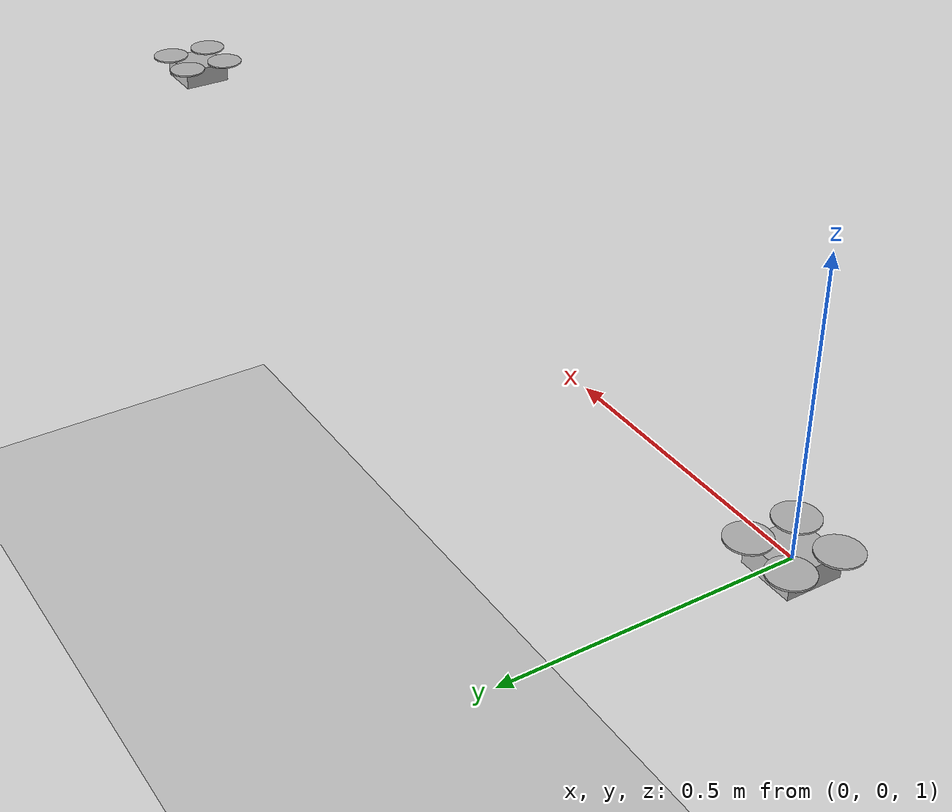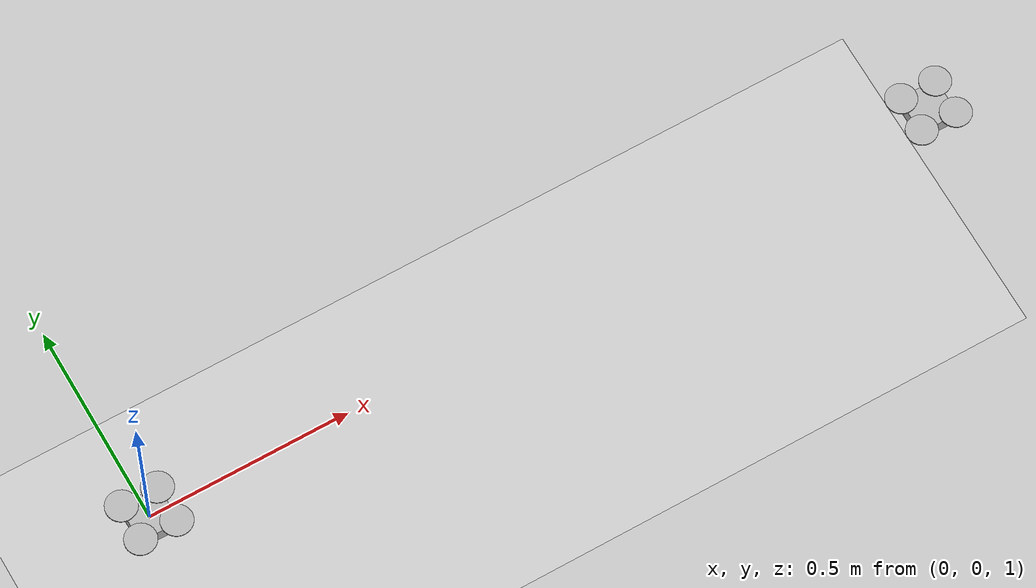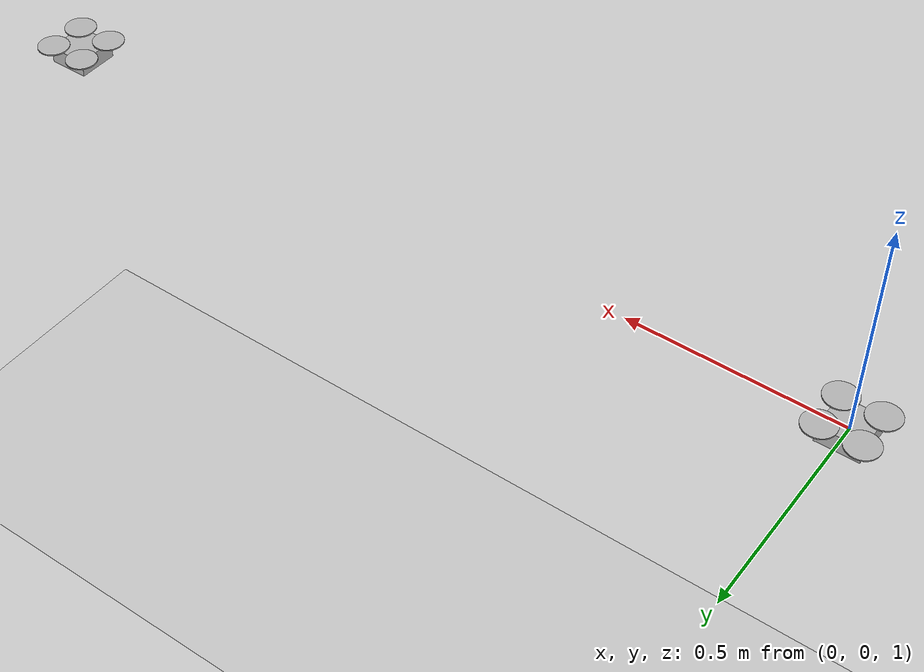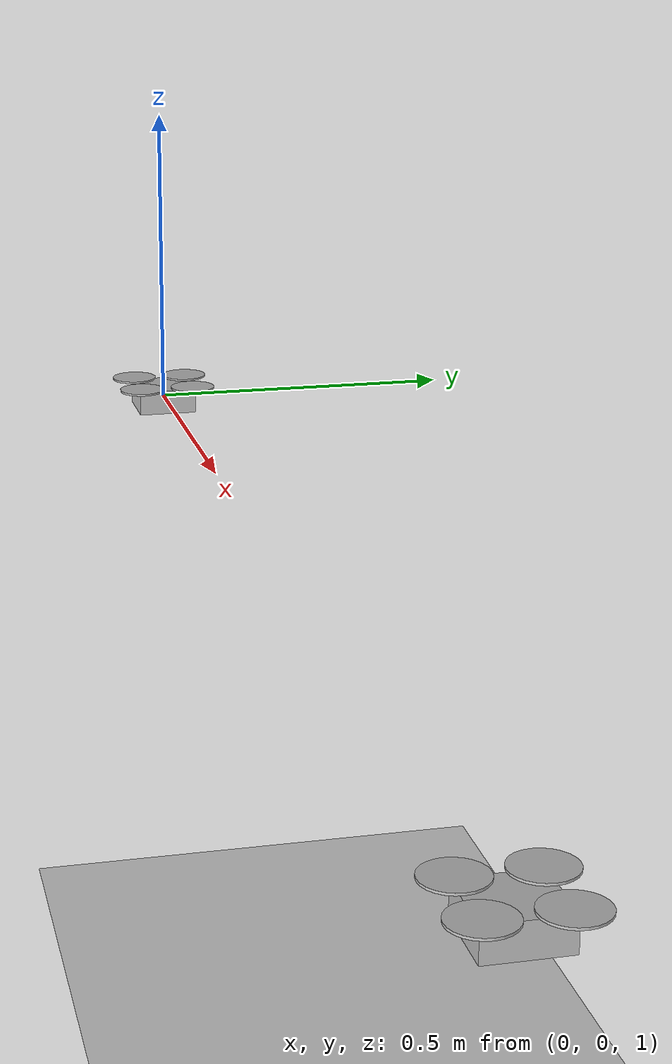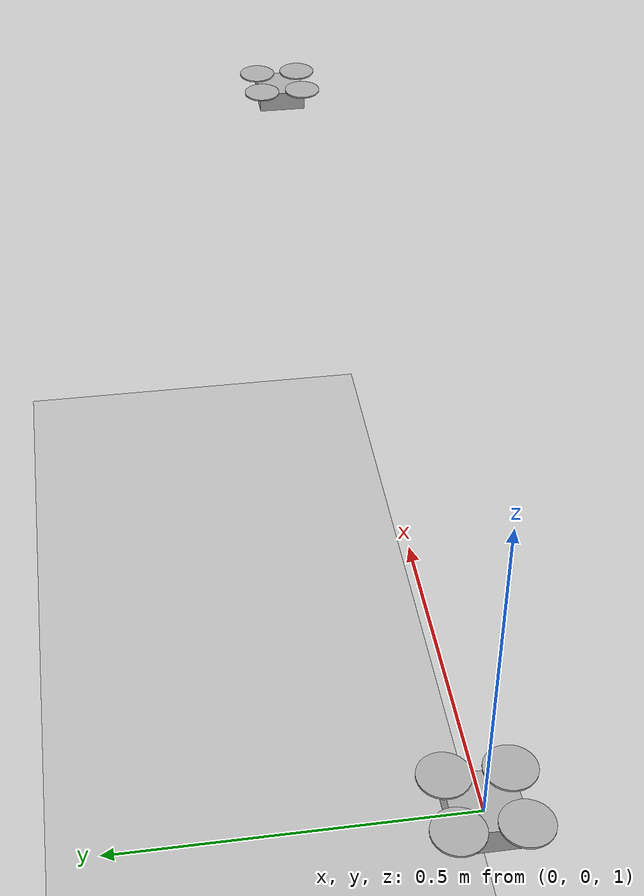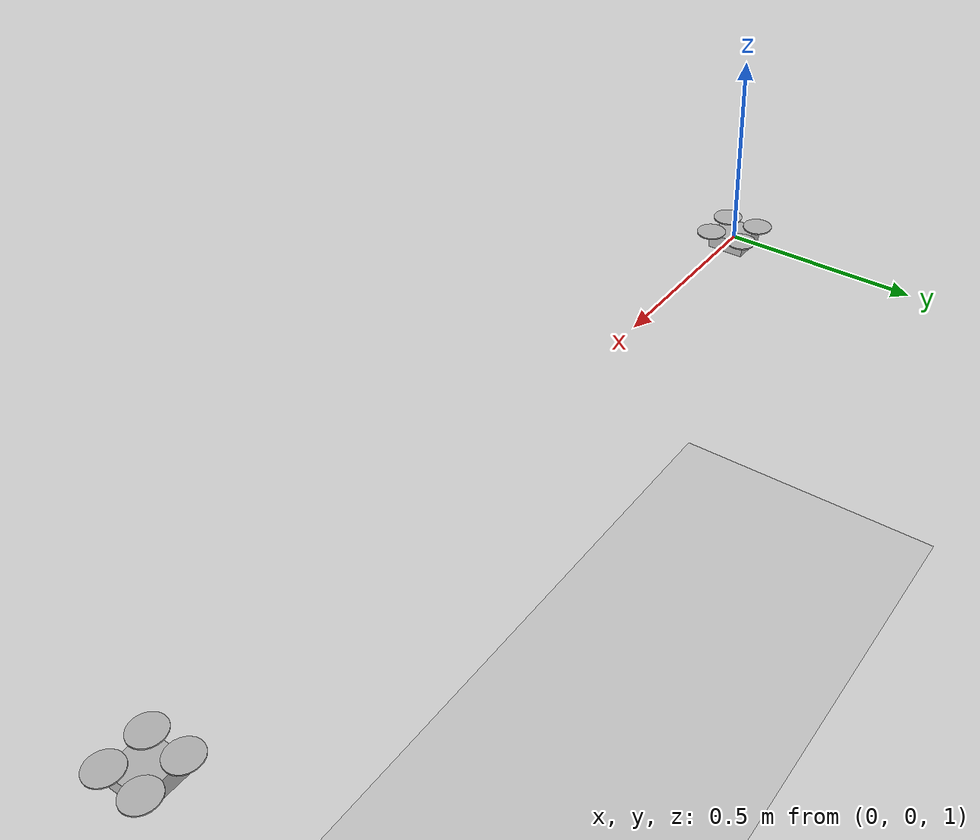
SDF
<?xml version="1.0" ?>
<sdf version="1.9">
  <world name="chase">
    <physics name="1ms" type="ignored">
      <max_step_size>0.001</max_step_size>
      <real_time_factor>0</real_time_factor>
    </physics>
    <plugin filename="gz-sim-physics-system" name="gz::sim::systems::Physics"/>
    <plugin filename="gz-sim-user-commands-system" name="gz::sim::systems::UserCommands"/>
    <plugin filename="gz-sim-scene-broadcaster-system" name="gz::sim::systems::SceneBroadcaster"/>

    <light type="directional" name="sun">
      <cast_shadows>false</cast_shadows>
      <pose>0 0 10 0 0 0</pose>
      <diffuse>0.9 0.9 0.9 1</diffuse>
      <direction>-0.5 0.1 -0.9</direction>
    </light>

    <model name="ground_plane">
      <static>true</static>
      <link name="link">
        <collision name="collision">
          <geometry><plane><normal>0 0 1</normal><size>100 100</size></plane></geometry>
        </collision>
        <visual name="visual">
          <geometry><plane><normal>0 0 1</normal><size>100 100</size></plane></geometry>
        </visual>
      </link>
    </model>

    <model name="follower">
      <pose>0 0 1 0 0 0</pose>
      <link name="base_link">
        <inertial>
          <mass>0.06</mass>
          <inertia>
            <ixx>5.643e-05</ixx><iyy>5.643e-05</iyy><izz>9.604e-05</izz>
            <ixy>0</ixy><ixz>0</ixz><iyz>0</iyz>
          </inertia>
        </inertial>
        <collision name="base_collision">
          <geometry><box><size>0.098 0.098 0.041</size></box></geometry>
        </collision>
        <visual name="base_visual">
          <geometry><box><size>0.098 0.098 0.041</size></box></geometry>
        </visual>
      </link>
      <link name="rotor_0">
        <pose>0.045 0.045 0.024 0 0 0</pose>
        <inertial>
          <mass>0.005</mass>
          <inertia>
            <ixx>1.805e-06</ixx><iyy>1.805e-06</iyy>
            <izz>3.610e-06</izz>
            <ixy>0</ixy><ixz>0</ixz><iyz>0</iyz>
          </inertia>
        </inertial>
        <visual name="rotor_0_visual">
          <geometry><cylinder><radius>0.038</radius><length>0.003</length></cylinder></geometry>
        </visual>
      </link>
      <joint name="rotor_0_joint" type="revolute">
        <parent>base_link</parent>
        <child>rotor_0</child>
        <axis>
          <xyz>0 0 1</xyz>
          <limit><lower>-1e16</lower><upper>1e16</upper></limit>
          <dynamics><spring_reference>0</spring_reference><spring_stiffness>0</spring_stiffness></dynamics>
        </axis>
      </joint>
      <link name="rotor_1">
        <pose>-0.045 -0.045 0.024 0 0 0</pose>
        <inertial>
          <mass>0.005</mass>
          <inertia>
            <ixx>1.805e-06</ixx><iyy>1.805e-06</iyy>
            <izz>3.610e-06</izz>
            <ixy>0</ixy><ixz>0</ixz><iyz>0</iyz>
          </inertia>
        </inertial>
        <visual name="rotor_1_visual">
          <geometry><cylinder><radius>0.038</radius><length>0.003</length></cylinder></geometry>
        </visual>
      </link>
      <joint name="rotor_1_joint" type="revolute">
        <parent>base_link</parent>
        <child>rotor_1</child>
        <axis>
          <xyz>0 0 1</xyz>
          <limit><lower>-1e16</lower><upper>1e16</upper></limit>
          <dynamics><spring_reference>0</spring_reference><spring_stiffness>0</spring_stiffness></dynamics>
        </axis>
      </joint>
      <link name="rotor_2">
        <pose>0.045 -0.045 0.024 0 0 0</pose>
        <inertial>
          <mass>0.005</mass>
          <inertia>
            <ixx>1.805e-06</ixx><iyy>1.805e-06</iyy>
            <izz>3.610e-06</izz>
            <ixy>0</ixy><ixz>0</ixz><iyz>0</iyz>
          </inertia>
        </inertial>
        <visual name="rotor_2_visual">
          <geometry><cylinder><radius>0.038</radius><length>0.003</length></cylinder></geometry>
        </visual>
      </link>
      <joint name="rotor_2_joint" type="revolute">
        <parent>base_link</parent>
        <child>rotor_2</child>
        <axis>
          <xyz>0 0 1</xyz>
          <limit><lower>-1e16</lower><upper>1e16</upper></limit>
          <dynamics><spring_reference>0</spring_reference><spring_stiffness>0</spring_stiffness></dynamics>
        </axis>
      </joint>
      <link name="rotor_3">
        <pose>-0.045 0.045 0.024 0 0 0</pose>
        <inertial>
          <mass>0.005</mass>
          <inertia>
            <ixx>1.805e-06</ixx><iyy>1.805e-06</iyy>
            <izz>3.610e-06</izz>
            <ixy>0</ixy><ixz>0</ixz><iyz>0</iyz>
          </inertia>
        </inertial>
        <visual name="rotor_3_visual">
          <geometry><cylinder><radius>0.038</radius><length>0.003</length></cylinder></geometry>
        </visual>
      </link>
      <joint name="rotor_3_joint" type="revolute">
        <parent>base_link</parent>
        <child>rotor_3</child>
        <axis>
          <xyz>0 0 1</xyz>
          <limit><lower>-1e16</lower><upper>1e16</upper></limit>
          <dynamics><spring_reference>0</spring_reference><spring_stiffness>0</spring_stiffness></dynamics>
        </axis>
      </joint>
      <plugin filename="gz-sim-multicopter-motor-model-system"
              name="gz::sim::systems::MulticopterMotorModel">
        <robotNamespace>follower</robotNamespace>
        <jointName>rotor_0_joint</jointName>
        <linkName>rotor_0</linkName>
        <turningDirection>ccw</turningDirection>
        <timeConstantUp>0.0125</timeConstantUp>
        <timeConstantDown>0.025</timeConstantDown>
        <maxRotVelocity>2500.0</maxRotVelocity>
        <motorConstant>1.2557e-07</motorConstant>
        <momentConstant>0.016</momentConstant>
        <commandSubTopic>command/motor_speed</commandSubTopic>
        <actuator_number>0</actuator_number>
        <rotorDragCoefficient>2.257138210133334e-06</rotorDragCoefficient>
        <rollingMomentCoefficient>2.7989333333333336e-08</rollingMomentCoefficient>
        <motorSpeedPubTopic>motor_speed/0</motorSpeedPubTopic>
        <rotorVelocitySlowdownSim>10</rotorVelocitySlowdownSim>
        <motorType>velocity</motorType>
      </plugin>
      <plugin filename="gz-sim-multicopter-motor-model-system"
              name="gz::sim::systems::MulticopterMotorModel">
        <robotNamespace>follower</robotNamespace>
        <jointName>rotor_1_joint</jointName>
        <linkName>rotor_1</linkName>
        <turningDirection>ccw</turningDirection>
        <timeConstantUp>0.0125</timeConstantUp>
        <timeConstantDown>0.025</timeConstantDown>
        <maxRotVelocity>2500.0</maxRotVelocity>
        <motorConstant>1.2557e-07</motorConstant>
        <momentConstant>0.016</momentConstant>
        <commandSubTopic>command/motor_speed</commandSubTopic>
        <actuator_number>1</actuator_number>
        <rotorDragCoefficient>2.257138210133334e-06</rotorDragCoefficient>
        <rollingMomentCoefficient>2.7989333333333336e-08</rollingMomentCoefficient>
        <motorSpeedPubTopic>motor_speed/1</motorSpeedPubTopic>
        <rotorVelocitySlowdownSim>10</rotorVelocitySlowdownSim>
        <motorType>velocity</motorType>
      </plugin>
      <plugin filename="gz-sim-multicopter-motor-model-system"
              name="gz::sim::systems::MulticopterMotorModel">
        <robotNamespace>follower</robotNamespace>
        <jointName>rotor_2_joint</jointName>
        <linkName>rotor_2</linkName>
        <turningDirection>cw</turningDirection>
        <timeConstantUp>0.0125</timeConstantUp>
        <timeConstantDown>0.025</timeConstantDown>
        <maxRotVelocity>2500.0</maxRotVelocity>
        <motorConstant>1.2557e-07</motorConstant>
        <momentConstant>0.016</momentConstant>
        <commandSubTopic>command/motor_speed</commandSubTopic>
        <actuator_number>2</actuator_number>
        <rotorDragCoefficient>2.257138210133334e-06</rotorDragCoefficient>
        <rollingMomentCoefficient>2.7989333333333336e-08</rollingMomentCoefficient>
        <motorSpeedPubTopic>motor_speed/2</motorSpeedPubTopic>
        <rotorVelocitySlowdownSim>10</rotorVelocitySlowdownSim>
        <motorType>velocity</motorType>
      </plugin>
      <plugin filename="gz-sim-multicopter-motor-model-system"
              name="gz::sim::systems::MulticopterMotorModel">
        <robotNamespace>follower</robotNamespace>
        <jointName>rotor_3_joint</jointName>
        <linkName>rotor_3</linkName>
        <turningDirection>cw</turningDirection>
        <timeConstantUp>0.0125</timeConstantUp>
        <timeConstantDown>0.025</timeConstantDown>
        <maxRotVelocity>2500.0</maxRotVelocity>
        <motorConstant>1.2557e-07</motorConstant>
        <momentConstant>0.016</momentConstant>
        <commandSubTopic>command/motor_speed</commandSubTopic>
        <actuator_number>3</actuator_number>
        <rotorDragCoefficient>2.257138210133334e-06</rotorDragCoefficient>
        <rollingMomentCoefficient>2.7989333333333336e-08</rollingMomentCoefficient>
        <motorSpeedPubTopic>motor_speed/3</motorSpeedPubTopic>
        <rotorVelocitySlowdownSim>10</rotorVelocitySlowdownSim>
        <motorType>velocity</motorType>
      </plugin>
      <plugin filename="gz-sim-multicopter-control-system"
              name="gz::sim::systems::MulticopterVelocityControl">
        <robotNamespace>follower</robotNamespace>
        <commandSubTopic>cmd_vel</commandSubTopic>
        <enableSubTopic>enable</enableSubTopic>
        <comLinkName>base_link</comLinkName>
        <velocityGain>0.15 0.15 0.15</velocityGain>
        <attitudeGain>0.006 0.009 0.0004</attitudeGain>
        <angularRateGain>0.0012 0.0016 0.0005</angularRateGain>
        <maximumLinearAcceleration>2.0 2.0 2.0</maximumLinearAcceleration>
        <rotorConfiguration>
          <rotor>
            <jointName>rotor_0_joint</jointName>
            <forceConstant>1.2557e-07</forceConstant>
            <momentConstant>0.016</momentConstant>
            <direction>1</direction>
          </rotor>
          <rotor>
            <jointName>rotor_1_joint</jointName>
            <forceConstant>1.2557e-07</forceConstant>
            <momentConstant>0.016</momentConstant>
            <direction>1</direction>
          </rotor>
          <rotor>
            <jointName>rotor_2_joint</jointName>
            <forceConstant>1.2557e-07</forceConstant>
            <momentConstant>0.016</momentConstant>
            <direction>-1</direction>
          </rotor>
          <rotor>
            <jointName>rotor_3_joint</jointName>
            <forceConstant>1.2557e-07</forceConstant>
            <momentConstant>0.016</momentConstant>
            <direction>-1</direction>
          </rotor>
        </rotorConfiguration>
      </plugin>
      <plugin filename="gz-sim-odometry-publisher-system"
              name="gz::sim::systems::OdometryPublisher">
        <dimensions>3</dimensions>
        <odom_publish_frequency>100</odom_publish_frequency>
      </plugin>
    </model>
    <model name="target">
      <pose>2 0 1 0 0 0</pose>
      <link name="base_link">
        <inertial>
          <mass>0.06</mass>
          <inertia>
            <ixx>5.643e-05</ixx><iyy>5.643e-05</iyy><izz>9.604e-05</izz>
            <ixy>0</ixy><ixz>0</ixz><iyz>0</iyz>
          </inertia>
        </inertial>
        <collision name="base_collision">
          <geometry><box><size>0.098 0.098 0.041</size></box></geometry>
        </collision>
        <visual name="base_visual">
          <geometry><box><size>0.098 0.098 0.041</size></box></geometry>
        </visual>
      </link>
      <link name="rotor_0">
        <pose>0.045 0.045 0.024 0 0 0</pose>
        <inertial>
          <mass>0.005</mass>
          <inertia>
            <ixx>1.805e-06</ixx><iyy>1.805e-06</iyy>
            <izz>3.610e-06</izz>
            <ixy>0</ixy><ixz>0</ixz><iyz>0</iyz>
          </inertia>
        </inertial>
        <visual name="rotor_0_visual">
          <geometry><cylinder><radius>0.038</radius><length>0.003</length></cylinder></geometry>
        </visual>
      </link>
      <joint name="rotor_0_joint" type="revolute">
        <parent>base_link</parent>
        <child>rotor_0</child>
        <axis>
          <xyz>0 0 1</xyz>
          <limit><lower>-1e16</lower><upper>1e16</upper></limit>
          <dynamics><spring_reference>0</spring_reference><spring_stiffness>0</spring_stiffness></dynamics>
        </axis>
      </joint>
      <link name="rotor_1">
        <pose>-0.045 -0.045 0.024 0 0 0</pose>
        <inertial>
          <mass>0.005</mass>
          <inertia>
            <ixx>1.805e-06</ixx><iyy>1.805e-06</iyy>
            <izz>3.610e-06</izz>
            <ixy>0</ixy><ixz>0</ixz><iyz>0</iyz>
          </inertia>
        </inertial>
        <visual name="rotor_1_visual">
          <geometry><cylinder><radius>0.038</radius><length>0.003</length></cylinder></geometry>
        </visual>
      </link>
      <joint name="rotor_1_joint" type="revolute">
        <parent>base_link</parent>
        <child>rotor_1</child>
        <axis>
          <xyz>0 0 1</xyz>
          <limit><lower>-1e16</lower><upper>1e16</upper></limit>
          <dynamics><spring_reference>0</spring_reference><spring_stiffness>0</spring_stiffness></dynamics>
        </axis>
      </joint>
      <link name="rotor_2">
        <pose>0.045 -0.045 0.024 0 0 0</pose>
        <inertial>
          <mass>0.005</mass>
          <inertia>
            <ixx>1.805e-06</ixx><iyy>1.805e-06</iyy>
            <izz>3.610e-06</izz>
            <ixy>0</ixy><ixz>0</ixz><iyz>0</iyz>
          </inertia>
        </inertial>
        <visual name="rotor_2_visual">
          <geometry><cylinder><radius>0.038</radius><length>0.003</length></cylinder></geometry>
        </visual>
      </link>
      <joint name="rotor_2_joint" type="revolute">
        <parent>base_link</parent>
        <child>rotor_2</child>
        <axis>
          <xyz>0 0 1</xyz>
          <limit><lower>-1e16</lower><upper>1e16</upper></limit>
          <dynamics><spring_reference>0</spring_reference><spring_stiffness>0</spring_stiffness></dynamics>
        </axis>
      </joint>
      <link name="rotor_3">
        <pose>-0.045 0.045 0.024 0 0 0</pose>
        <inertial>
          <mass>0.005</mass>
          <inertia>
            <ixx>1.805e-06</ixx><iyy>1.805e-06</iyy>
            <izz>3.610e-06</izz>
            <ixy>0</ixy><ixz>0</ixz><iyz>0</iyz>
          </inertia>
        </inertial>
        <visual name="rotor_3_visual">
          <geometry><cylinder><radius>0.038</radius><length>0.003</length></cylinder></geometry>
        </visual>
      </link>
      <joint name="rotor_3_joint" type="revolute">
        <parent>base_link</parent>
        <child>rotor_3</child>
        <axis>
          <xyz>0 0 1</xyz>
          <limit><lower>-1e16</lower><upper>1e16</upper></limit>
          <dynamics><spring_reference>0</spring_reference><spring_stiffness>0</spring_stiffness></dynamics>
        </axis>
      </joint>
      <plugin filename="gz-sim-multicopter-motor-model-system"
              name="gz::sim::systems::MulticopterMotorModel">
        <robotNamespace>target</robotNamespace>
        <jointName>rotor_0_joint</jointName>
        <linkName>rotor_0</linkName>
        <turningDirection>ccw</turningDirection>
        <timeConstantUp>0.0125</timeConstantUp>
        <timeConstantDown>0.025</timeConstantDown>
        <maxRotVelocity>2500.0</maxRotVelocity>
        <motorConstant>1.2557e-07</motorConstant>
        <momentConstant>0.016</momentConstant>
        <commandSubTopic>command/motor_speed</commandSubTopic>
        <actuator_number>0</actuator_number>
        <rotorDragCoefficient>2.257138210133334e-06</rotorDragCoefficient>
        <rollingMomentCoefficient>2.7989333333333336e-08</rollingMomentCoefficient>
        <motorSpeedPubTopic>motor_speed/0</motorSpeedPubTopic>
        <rotorVelocitySlowdownSim>10</rotorVelocitySlowdownSim>
        <motorType>velocity</motorType>
      </plugin>
      <plugin filename="gz-sim-multicopter-motor-model-system"
              name="gz::sim::systems::MulticopterMotorModel">
        <robotNamespace>target</robotNamespace>
        <jointName>rotor_1_joint</jointName>
        <linkName>rotor_1</linkName>
        <turningDirection>ccw</turningDirection>
        <timeConstantUp>0.0125</timeConstantUp>
        <timeConstantDown>0.025</timeConstantDown>
        <maxRotVelocity>2500.0</maxRotVelocity>
        <motorConstant>1.2557e-07</motorConstant>
        <momentConstant>0.016</momentConstant>
        <commandSubTopic>command/motor_speed</commandSubTopic>
        <actuator_number>1</actuator_number>
        <rotorDragCoefficient>2.257138210133334e-06</rotorDragCoefficient>
        <rollingMomentCoefficient>2.7989333333333336e-08</rollingMomentCoefficient>
        <motorSpeedPubTopic>motor_speed/1</motorSpeedPubTopic>
        <rotorVelocitySlowdownSim>10</rotorVelocitySlowdownSim>
        <motorType>velocity</motorType>
      </plugin>
      <plugin filename="gz-sim-multicopter-motor-model-system"
              name="gz::sim::systems::MulticopterMotorModel">
        <robotNamespace>target</robotNamespace>
        <jointName>rotor_2_joint</jointName>
        <linkName>rotor_2</linkName>
        <turningDirection>cw</turningDirection>
        <timeConstantUp>0.0125</timeConstantUp>
        <timeConstantDown>0.025</timeConstantDown>
        <maxRotVelocity>2500.0</maxRotVelocity>
        <motorConstant>1.2557e-07</motorConstant>
        <momentConstant>0.016</momentConstant>
        <commandSubTopic>command/motor_speed</commandSubTopic>
        <actuator_number>2</actuator_number>
        <rotorDragCoefficient>2.257138210133334e-06</rotorDragCoefficient>
        <rollingMomentCoefficient>2.7989333333333336e-08</rollingMomentCoefficient>
        <motorSpeedPubTopic>motor_speed/2</motorSpeedPubTopic>
        <rotorVelocitySlowdownSim>10</rotorVelocitySlowdownSim>
        <motorType>velocity</motorType>
      </plugin>
      <plugin filename="gz-sim-multicopter-motor-model-system"
              name="gz::sim::systems::MulticopterMotorModel">
        <robotNamespace>target</robotNamespace>
        <jointName>rotor_3_joint</jointName>
        <linkName>rotor_3</linkName>
        <turningDirection>cw</turningDirection>
        <timeConstantUp>0.0125</timeConstantUp>
        <timeConstantDown>0.025</timeConstantDown>
        <maxRotVelocity>2500.0</maxRotVelocity>
        <motorConstant>1.2557e-07</motorConstant>
        <momentConstant>0.016</momentConstant>
        <commandSubTopic>command/motor_speed</commandSubTopic>
        <actuator_number>3</actuator_number>
        <rotorDragCoefficient>2.257138210133334e-06</rotorDragCoefficient>
        <rollingMomentCoefficient>2.7989333333333336e-08</rollingMomentCoefficient>
        <motorSpeedPubTopic>motor_speed/3</motorSpeedPubTopic>
        <rotorVelocitySlowdownSim>10</rotorVelocitySlowdownSim>
        <motorType>velocity</motorType>
      </plugin>
      <plugin filename="gz-sim-multicopter-control-system"
              name="gz::sim::systems::MulticopterVelocityControl">
        <robotNamespace>target</robotNamespace>
        <commandSubTopic>cmd_vel</commandSubTopic>
        <enableSubTopic>enable</enableSubTopic>
        <comLinkName>base_link</comLinkName>
        <velocityGain>0.15 0.15 0.15</velocityGain>
        <attitudeGain>0.006 0.009 0.0004</attitudeGain>
        <angularRateGain>0.0012 0.0016 0.0005</angularRateGain>
        <maximumLinearAcceleration>2.0 2.0 2.0</maximumLinearAcceleration>
        <rotorConfiguration>
          <rotor>
            <jointName>rotor_0_joint</jointName>
            <forceConstant>1.2557e-07</forceConstant>
            <momentConstant>0.016</momentConstant>
            <direction>1</direction>
          </rotor>
          <rotor>
            <jointName>rotor_1_joint</jointName>
            <forceConstant>1.2557e-07</forceConstant>
            <momentConstant>0.016</momentConstant>
            <direction>1</direction>
          </rotor>
          <rotor>
            <jointName>rotor_2_joint</jointName>
            <forceConstant>1.2557e-07</forceConstant>
            <momentConstant>0.016</momentConstant>
            <direction>-1</direction>
          </rotor>
          <rotor>
            <jointName>rotor_3_joint</jointName>
            <forceConstant>1.2557e-07</forceConstant>
            <momentConstant>0.016</momentConstant>
            <direction>-1</direction>
          </rotor>
        </rotorConfiguration>
      </plugin>
      <plugin filename="gz-sim-odometry-publisher-system"
              name="gz::sim::systems::OdometryPublisher">
        <dimensions>3</dimensions>
        <odom_publish_frequency>100</odom_publish_frequency>
      </plugin>
    </model>
  </world>
</sdf>
